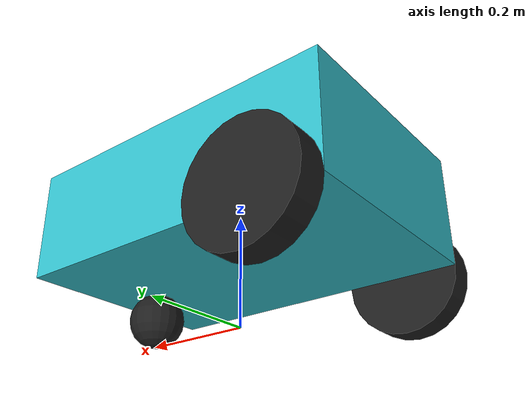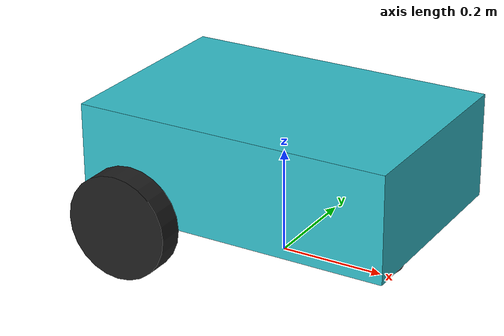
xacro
<?xml version = "1.0"?>
<robot name = "my_robot" xmlns:xacro="http://www.ros.org/wiki/xacro">

    <xacro:property name = "base_width" value = "0.6" />
    <xacro:property name = "base_length" value = "0.4" />
    <xacro:property name = "base_height" value = "0.2" />

    <xacro:property name = "wheel_radius" value = "0.1" />
    <xacro:property name = "wheel_length" value = "0.05" />
    <xacro:property name = "caster_wheel_radius" value = "0.05" />

    <xacro:macro name = "wheel_link" params = "prefix">
        <link name = "${prefix}_wheel_link">
            <visual>
                <geometry>
                    <cylinder radius = "${wheel_radius}" length = "${wheel_length}" />
                </geometry>
                <origin xyz = "0 0 0" rpy = "${pi/2} 0 0" />
                <material name = "black" />
            </visual>

            <collision>
                <geometry>
                    <cylinder radius = "${wheel_radius}" length = "${wheel_length}" />
                </geometry>
                <origin xyz = "0 0 0" rpy = "${pi/2} 0 0" />
            </collision>

            <xacro:cylinder_inertia m = "1.0" r = "${2*wheel_radius}"
                                              h = "${2*wheel_length}"
                                              xyz = "0 0 0"
                                              rpy = "${pi/2} 0 0" />
        </link>
    </xacro:macro>

    <link name = "base_footprint" />

    <link name = "base_link">
        <visual>
            <geometry>
                <box size = "${base_width} ${base_length} ${base_height}" />
            </geometry>
            <origin xyz = "0 0 0" rpy = "0 0 0" />
            <material name = "cyan" />
        </visual>
        <collision>
            <geometry>
                <box size = "${base_width} ${base_length} ${base_height}" />
            </geometry>
            <origin xyz = "0 0 0" rpy = "0 0 0" />
        </collision>

        <xacro:box_inertia m = "5.0" l = "${2*base_length}"
                                     w = "${2*base_width}"
                                     h = "${2*base_height}"
                                     xyz = "0 0 0"
                                     rpy = "0 0 0" />
    </link>

    <xacro:wheel_link prefix = "right" />
    <xacro:wheel_link prefix = "left" />

    <link name = "caster_wheel_link">
        <visual>
            <geometry>
                <sphere radius = "${caster_wheel_radius}" />
            </geometry>
            <origin xyz = "0 0 0" rpy = "0 0 0" />
            <material name = "black" />
        </visual>

        <collision>
            <geometry>
                <sphere radius = "${caster_wheel_radius}" />
            </geometry>
            <origin xyz = "0 0 0" rpy = "0 0 0" />
        </collision>

        <xacro:sphere_inertia m = "0.5" r = "${2*caster_wheel_radius}"
                                        xyz = "0 0 0"
                                        rpy = "0 0 0" />
    </link>

    <joint name = "base_joint" type = "fixed">
        <parent link = "base_footprint" />
        <child link  = "base_link" />
        <origin xyz = "0 0 ${(base_height / 2) + wheel_radius}" rpy = "0 0 0" />
    </joint>

    <joint name = "base_right_wheel_joint" type = "continuous">
        <parent link = "base_link" />
        <child link  = "right_wheel_link" />
        <origin xyz = "${(-(base_width / 2)) + wheel_radius}
                       ${-((base_length / 2) + (wheel_length / 2))}
                       ${-wheel_radius}"
                       rpy = "0 0 0" />
        <axis xyz = "0 1 0" />
    </joint>

    <joint name = "base_left_wheel_joint" type = "continuous">
        <parent link = "base_link" />
        <child link  = "left_wheel_link" />
        <origin xyz = "${(-(base_width / 2)) + wheel_radius}
                       ${(base_length / 2) + (wheel_length / 2)}
                       ${-wheel_radius}"
                       rpy = "0 0 0" />
        <axis xyz = "0 1 0" />
    </joint>

    <joint name = "base_caster_wheel_joint" type = "fixed">
        <parent link = "base_link" />
        <child link  = "caster_wheel_link" />
        <origin xyz = "0.2 0 ${-((base_height / 2) + caster_wheel_radius)}" rpy = "0 0 0" />
    </joint>

</robot>
